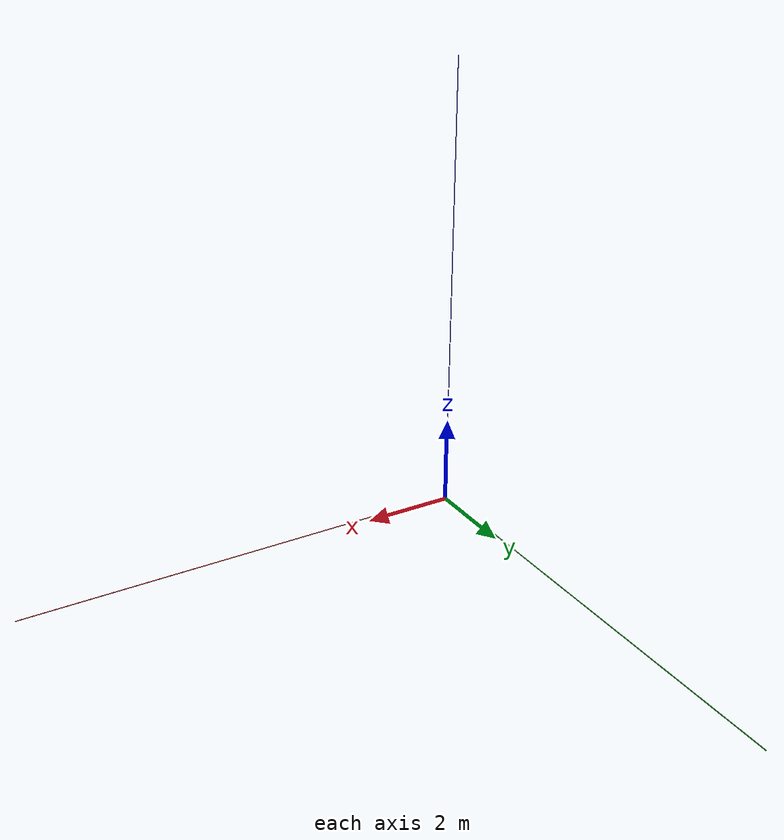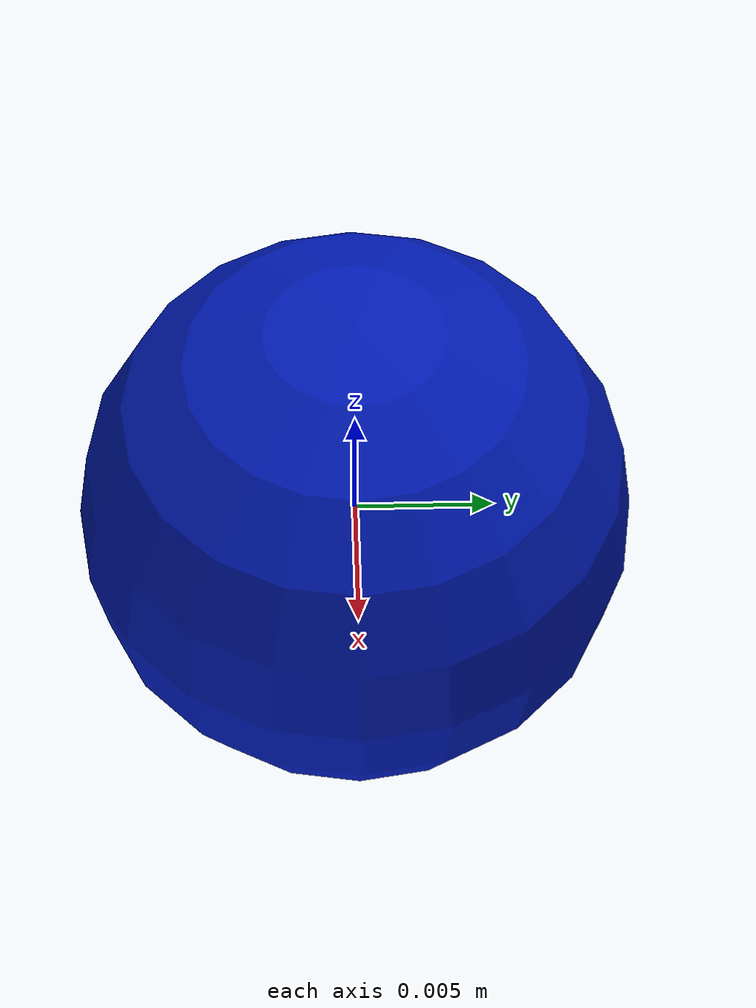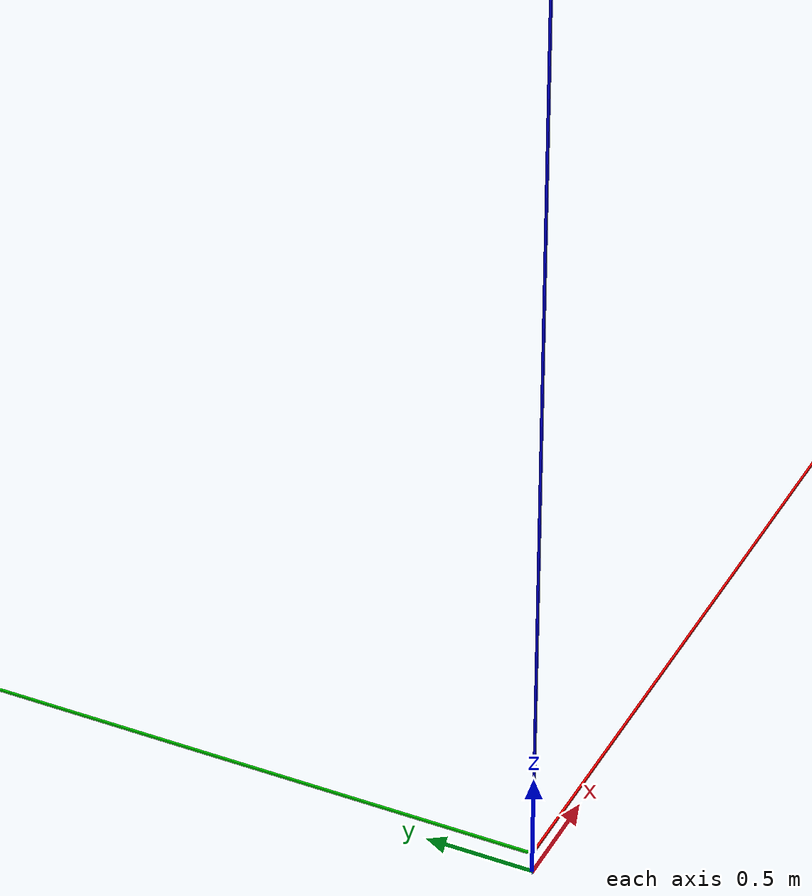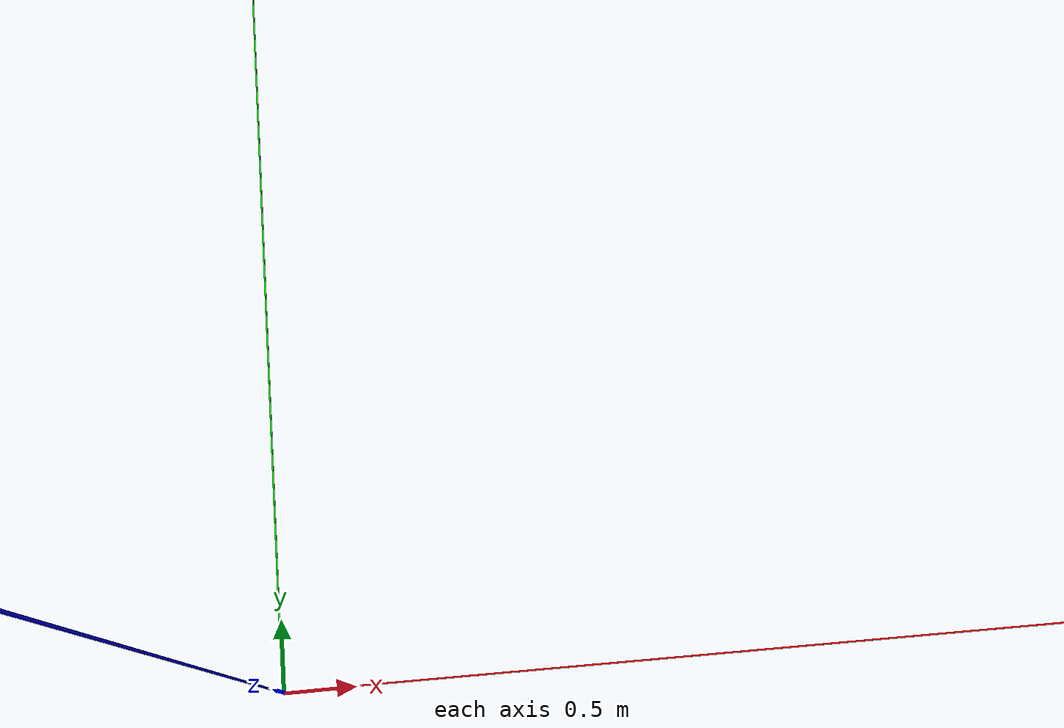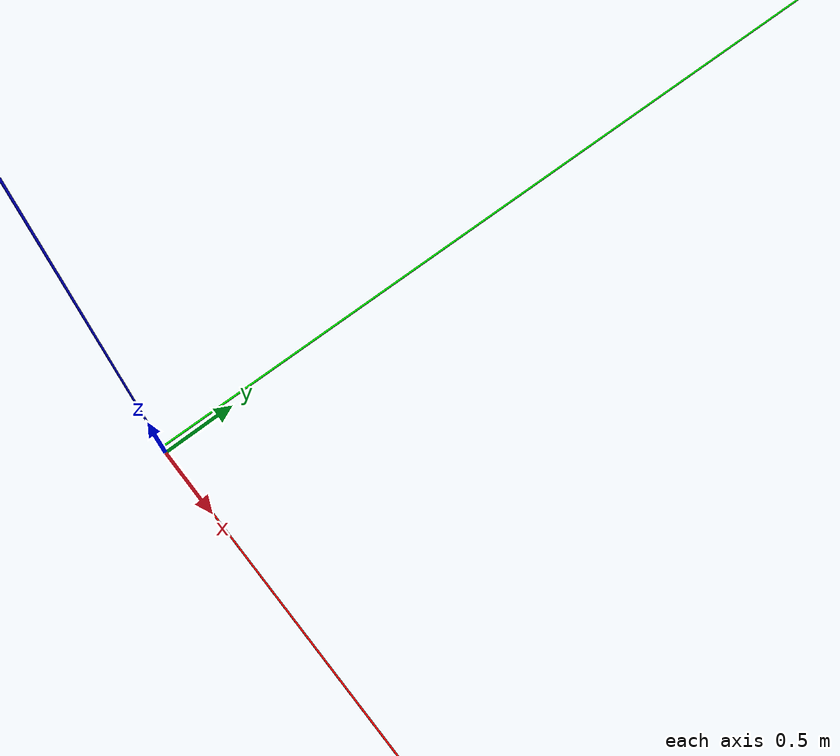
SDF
<sdf version="1.6">
 <world name="waves">
  <plugin filename="ignition-gazebo-physics-system" name="ignition::gazebo::systems::Physics"/>
  <plugin filename="ignition-gazebo-sensors-system" name="ignition::gazebo::systems::Sensors">
   <render_engine>ogre2</render_engine>
   <background_color>0.8 0.8 0.8</background_color>
  </plugin>
  <plugin filename="ignition-gazebo-scene-broadcaster-system" name="ignition::gazebo::systems::SceneBroadcaster"/>
  <plugin filename="ignition-gazebo-user-commands-system" name="ignition::gazebo::systems::UserCommands"/>
  <plugin filename="libignition-gazebo-imu-system.so" name="ignition::gazebo::systems::Imu"/>
  <scene><ambient>1.0 1.0 1.0</ambient><background>0.8 0.8 0.8</background></scene>
  <light type="directional" name="sun">
   <pose>0 0 10 0 0 0</pose>
   <diffuse>0.8 0.8 0.8 1</diffuse>
   <specular>0.6 0.6 0.6 1</specular>
   <direction>-0.5 0.1 -0.9</direction>
  </light>
  <include><uri>model://waves</uri></include>
  <model name="axes">
   <static>1</static>
   <link name="link">
    <visual name="r">
     <cast_shadows>0</cast_shadows>
     <pose>5 0 0.1 0 0 0</pose>
     <geometry><box><size>10 0.01 0.01</size></box></geometry>
     <material>
      <ambient>1 0 0 1</ambient>
      <diffuse>1 0 0 1</diffuse>
      <emissive>1 0 0 1</emissive>
      <specular>0.5 0.5 0.5 1</specular>
     </material>
    </visual>
    <visual name="g">
     <cast_shadows>0</cast_shadows>
     <pose>0 5 0.1 0 0 0</pose>
     <geometry><box><size>0.01 10 0.01</size></box></geometry>
     <material>
      <ambient>0 1 0 1</ambient>
      <diffuse>0 1 0 1</diffuse>
      <emissive>0 1 0 1</emissive>
      <specular>0.5 0.5 0.5 1</specular>
     </material>
    </visual>
    <visual name="b">
     <cast_shadows>0</cast_shadows>
     <pose>0 0 5.1 0 0 0</pose>
     <geometry><box><size>0.01 0.01 10</size></box></geometry>
     <material>
      <ambient>0 0 1 1</ambient>
      <diffuse>0 0 1 1</diffuse>
      <emissive>0 0 1 1</emissive>
      <specular>0.5 0.5 0.5 1</specular>
     </material>
    </visual>
   </link>
  </model>
 </world>
</sdf>

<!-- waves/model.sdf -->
<sdf version="1.6">
  <model name="waves">
    <static>true</static>

    <plugin
        filename="ignition-marine1-waves-model-system"
        name="ignition::gazebo::systems::WavesModel">
        <static>0</static>
        <update_rate>30</update_rate>
        <wave>
          <!-- `fft` wave parameters -->
          <algorithm>fft</algorithm>
          <tile_size>1024</tile_size>
          <cell_count>128</cell_count>
          <wind_velocity>5 0</wind_velocity>
          <steepness>0.3</steepness>
        </wave>
    </plugin>

    <link name="base_link">
      <visual name="visual">
        <geometry>
          <sphere>
            <radius>0.01</radius>
          </sphere>
        </geometry>
        <material>
          <ambient>0.0 0.05 0.8 0.92</ambient>
          <diffuse>0.0 0.1 0.7 0.92</diffuse>
          <specular>0.7 0.7 0.7 0.92</specular>
          <pbr>
            <metal>
              <normal_map>materials/wave_normals.dds</normal_map>
              <environment_map>materials/skybox_lowres.dds</environment_map>
              <roughness>0.3</roughness>
              <metalness>0.1</metalness>
            </metal>
          </pbr>
        </material>

        <!-- \todo remove duplicate params; populate from service instead -->
        <plugin
            filename="ignition-marine1-waves-visual-system"
            name="ignition::gazebo::systems::WavesVisual">
            <static>0</static>
            <wave>
              <!-- `fft` wave parameters -->
              <algorithm>fft</algorithm>
              <tile_size>1024</tile_size>
              <cell_count>128</cell_count>
              <wind_velocity>5 0</wind_velocity>
              <steepness>0.3</steepness>
            </wave>
        </plugin>

      </visual>
    </link>
  </model>
</sdf>
